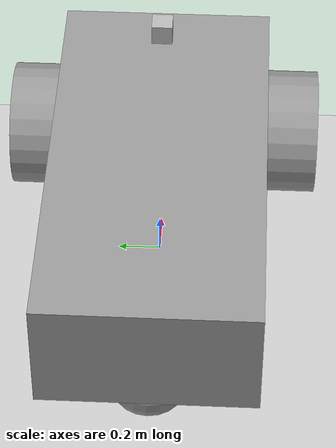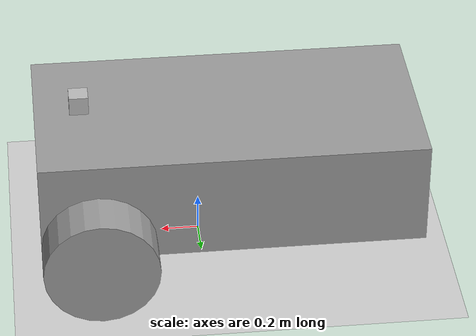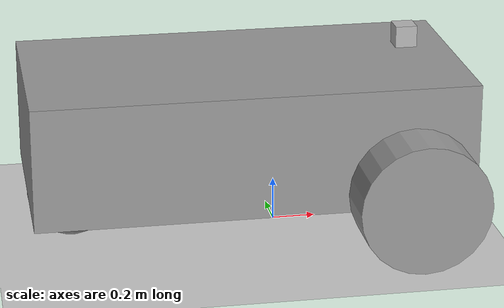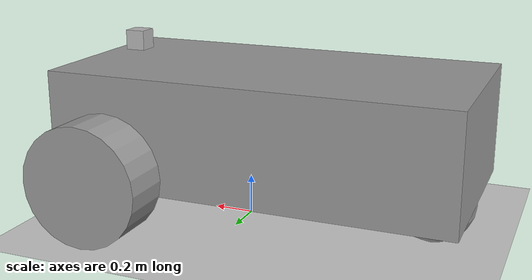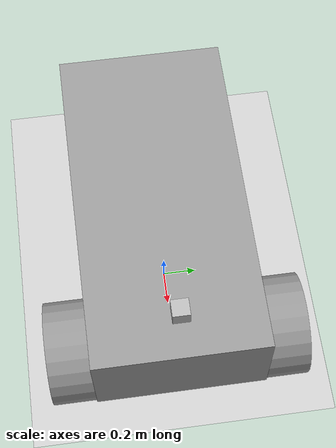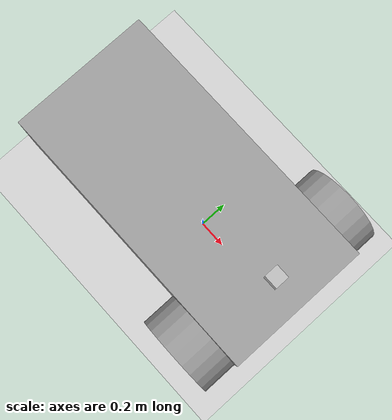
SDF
<?xml version="1.0" ?>
<sdf version="1.5">
  <world name="default">
    <!-- A global light source -->
    <include>
      <uri>file:///home/ironman/gazebo-robocomp/gazebo_robocomp_models/sun</uri>
    </include>
    <!-- A ground plane -->
    <include>
      <uri>file:///home/ironman/gazebo-robocomp/gazebo_robocomp_models/ground_plane</uri>
    </include>

    <!-- A testing model that includes the Velodyne sensor model -->
    <model name="my_robot">
      <!-- Attach the plugin to this model -->

      <include>
        <uri>file:///home/ironman/gazebo-robocomp/gazebo_robocomp_models/my_robot</uri>
      </include>

      <plugin name="DiffDrive" filename="libgazebo_robocomp_DiffDrive.so">
        <topicName>/DiffDrive/cmd</topicName>
      </plugin>

    </model>

  </world>
</sdf>

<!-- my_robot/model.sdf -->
<sdf version='1.5'>
	    <model name="my_robot">
  <pose frame=''>0 0 0.325 0 -0 0</pose>
    <link name='chassis'>
      <pose frame=''>-0.151427 -0 0.175 0 -0 0</pose>
      <inertial>
        <mass>1.14395</mass>
        <inertia>
          <ixx>0.126164</ixx>
          <ixy>0</ixy>
          <ixz>0</ixz>
          <iyy>0.416519</iyy>
          <iyz>0</iyz>
          <izz>0.481014</izz>
        </inertia>
        <pose frame=''>0 0 0 0 -0 0</pose>
      </inertial>
      <self_collide>0</self_collide>
      <visual name='visual'>
        <pose frame=''>0 0 0 0 -0 0</pose>
        <geometry>
          <box>
            <size>2.01142 1 0.568726</size>
          </box>
        </geometry>
        <material>
          <script>
            <uri>file://media/materials/scripts/gazebo.material</uri>
            <name>Gazebo/Grey</name>
          </script>
        </material>
        <cast_shadows>1</cast_shadows>
        <transparency>0</transparency>
      </visual>
      <collision name='collision'>
        <pose frame=''>0 0 0 0 -0 0</pose>
        <geometry>
          <box>
            <size>2.01142 1 0.568726</size>
          </box>
        </geometry>
        <surface>
          <friction>
            <ode>
              <mu>1</mu>
              <mu2>1</mu2>
              <fdir1>0 0 0</fdir1>
              <slip1>0</slip1>
              <slip2>0</slip2>
            </ode>
          </friction>
          <bounce>
            <restitution_coefficient>0</restitution_coefficient>
            <threshold>1e+06</threshold>
          </bounce>
          <contact>
            <collide_without_contact>0</collide_without_contact>
            <collide_without_contact_bitmask>1</collide_without_contact_bitmask>
            <collide_bitmask>1</collide_bitmask>
            <ode>
              <soft_cfm>0</soft_cfm>
              <soft_erp>0.2</soft_erp>
              <kp>1e+13</kp>
              <kd>1</kd>
              <max_vel>0.01</max_vel>
              <min_depth>0</min_depth>
            </ode>
          </contact>
        </surface>
      </collision>
    </link>
    <link name='wheel_1'>
      <pose frame=''>0.554283 0.625029 -0.025 1.5707 0 0</pose>
      <inertial>
        <mass>2</mass>
        <inertia>
          <ixx>0.145833</ixx>
          <ixy>0</ixy>
          <ixz>0</ixz>
          <iyy>0.145833</iyy>
          <iyz>0</iyz>
          <izz>0.125</izz>
        </inertia>
        <pose frame=''>0 0 0 0 -0 0</pose>
      </inertial>
      <self_collide>0</self_collide>
      <visual name='visual'>
        <pose frame=''>0 0 0 0 -0 0</pose>
        <geometry>
          <cylinder>
            <radius>0.3</radius>
            <length>0.25</length>
          </cylinder>
        </geometry>
        <material>
          <script>
            <uri>file://media/materials/scripts/gazebo.material</uri>
            <name>Gazebo/Grey</name>
          </script>
        </material>
        <cast_shadows>1</cast_shadows>
        <transparency>0</transparency>
      </visual>
      <collision name='collision'>
        <pose frame=''>0 0 0 0 -0 0</pose>
        <geometry>
          <cylinder>
            <radius>0.3</radius>
            <length>0.25</length>
          </cylinder>
        </geometry>
        <surface>
          <friction>
            <ode>
              <mu>1</mu>
              <mu2>1</mu2>
              <fdir1>0 0 0</fdir1>
              <slip1>0</slip1>
              <slip2>0</slip2>
            </ode>
          </friction>
          <bounce>
            <restitution_coefficient>0</restitution_coefficient>
            <threshold>1e+06</threshold>
          </bounce>
          <contact>
            <collide_without_contact>0</collide_without_contact>
            <collide_without_contact_bitmask>1</collide_without_contact_bitmask>
            <collide_bitmask>1</collide_bitmask>
            <ode>
              <soft_cfm>0</soft_cfm>
              <soft_erp>0.2</soft_erp>
              <kp>1e+13</kp>
              <kd>1</kd>
              <max_vel>0.01</max_vel>
              <min_depth>0</min_depth>
            </ode>
          </contact>
        </surface>
      </collision>
    </link>
    <link name='wheel_2'>
      <pose frame=''>0.554282 -0.625029 -0.025 1.5707 0 0</pose>
      <inertial>
        <mass>2</mass>
        <inertia>
          <ixx>0.145833</ixx>
          <ixy>0</ixy>
          <ixz>0</ixz>
          <iyy>0.145833</iyy>
          <iyz>0</iyz>
          <izz>0.125</izz>
        </inertia>
        <pose frame=''>0 0 0 0 -0 0</pose>
      </inertial>
      <self_collide>0</self_collide>
      <visual name='visual'>
        <pose frame=''>0 0 0 0 -0 0</pose>
        <geometry>
          <cylinder>
            <radius>0.3</radius>
            <length>0.25</length>
          </cylinder>
        </geometry>
        <material>
          <script>
            <uri>file://media/materials/scripts/gazebo.material</uri>
            <name>Gazebo/Grey</name>
          </script>
        </material>
        <cast_shadows>1</cast_shadows>
        <transparency>0</transparency>
      </visual>
      <collision name='collision'>
        <pose frame=''>0 0 0 0 -0 0</pose>
        <geometry>
          <cylinder>
            <radius>0.3</radius>
            <length>0.25</length>
          </cylinder>
        </geometry>
        <surface>
          <friction>
            <ode>
              <mu>1</mu>
              <mu2>1</mu2>
              <fdir1>0 0 0</fdir1>
              <slip1>0</slip1>
              <slip2>0</slip2>
            </ode>
          </friction>
          <bounce>
            <restitution_coefficient>0</restitution_coefficient>
            <threshold>1e+06</threshold>
          </bounce>
          <contact>
            <collide_without_contact>0</collide_without_contact>
            <collide_without_contact_bitmask>1</collide_without_contact_bitmask>
            <collide_bitmask>1</collide_bitmask>
            <ode>
              <soft_cfm>0</soft_cfm>
              <soft_erp>0.2</soft_erp>
              <kp>1e+13</kp>
              <kd>1</kd>
              <max_vel>0.01</max_vel>
              <min_depth>0</min_depth>
            </ode>
          </contact>
        </surface>
      </collision>
    </link>
    <link name='caster'>
      <pose frame=''>-0.957138 -0 -0.125 0 -0 0</pose>
      <inertial>
        <mass>1</mass>
        <inertia>
          <ixx>0.1</ixx>
          <ixy>0</ixy>
          <ixz>0</ixz>
          <iyy>0.1</iyy>
          <iyz>0</iyz>
          <izz>0.1</izz>
        </inertia>
        <pose frame=''>0 0 0 0 -0 0</pose>
      </inertial>
      <self_collide>0</self_collide>
      <visual name='visual'>
        <pose frame=''>0 0 0 0 -0 0</pose>
        <geometry>
          <sphere>
            <radius>0.2</radius>
          </sphere>
        </geometry>
        <material>
          <script>
            <uri>file://media/materials/scripts/gazebo.material</uri>
            <name>Gazebo/Grey</name>
          </script>
        </material>
        <cast_shadows>1</cast_shadows>
        <transparency>0</transparency>
      </visual>
      <collision name='collision'>
        <pose frame=''>0 0 0 0 -0 0</pose>
        <geometry>
          <sphere>
            <radius>0.2</radius>
          </sphere>
        </geometry>
        <surface>
          <friction>
            <ode>
              <mu>1</mu>
              <mu2>1</mu2>
              <fdir1>0 0 0</fdir1>
              <slip1>0</slip1>
              <slip2>0</slip2>
            </ode>
          </friction>
          <bounce>
            <restitution_coefficient>0</restitution_coefficient>
            <threshold>1e+06</threshold>
          </bounce>
          <contact>
            <collide_without_contact>0</collide_without_contact>
            <collide_without_contact_bitmask>1</collide_without_contact_bitmask>
            <collide_bitmask>1</collide_bitmask>
            <ode>
              <soft_cfm>0</soft_cfm>
              <soft_erp>0.2</soft_erp>
              <kp>1e+13</kp>
              <kd>1</kd>
              <max_vel>0.01</max_vel>
              <min_depth>0</min_depth>
            </ode>
          </contact>
        </surface>
      </collision>
    </link>
    <model name='laser'>
      <link name='link'>
        <pose frame=''>0.05 0.05 0.05 0 -0 0</pose>
        <inertial>
          <mass>0.1</mass>
          <inertia>
            <ixx>0.000166667</ixx>
            <iyy>0.000166667</iyy>
            <izz>0.000166667</izz>
          </inertia>
        </inertial>
        <collision name='collision'>
          <geometry>
            <box>
              <size>0.1 0.1 0.1</size>
            </box>
          </geometry>
        </collision>
        <visual name='visual'>
          <geometry>
            <box>
              <size>0.1 0.1 0.1</size>
            </box>
          </geometry>
        </visual>
        <sensor name='laser' type='ray'>
            <pose>0.01 0 0.03 0 -0 0</pose>
            <ray>
            <scan>
                <horizontal>
                <samples>640</samples>
                <resolution>1</resolution>
                <min_angle>-2.26889</min_angle>
                <max_angle>2.268899</max_angle>
                </horizontal>
            </scan>
            <range>
                <min>1</min>
                <max>10</max>
                <resolution>0.01</resolution>
            </range>
            <noise>
                <type>gaussian</type>
                <mean>0.0</mean>
                <stddev>0.01</stddev>
            </noise>
            </ray>
            <plugin name="gazebo_robocomp_laser" filename="libgazebo_robocomp_laser.so">
                <topic>/gazebo_robocomp_laser/scan/data</topic>
            </plugin>
            <always_on>1</always_on>
            <update_rate>30</update_rate>
            <visualize>true</visualize>
        </sensor>
      </link>
      <pose frame=''>0.569632 -0.03223 0.502056 0 -0 0</pose>
    </model>
    <joint name='chassis_wheel_1_revolute' type='revolute'>
      <parent>chassis</parent>
      <child>wheel_1</child>
      <pose frame=''>0 0 0 0 -0 0</pose>
      <axis>
        <xyz>0 0 1</xyz>
        <use_parent_model_frame>0</use_parent_model_frame>
        <limit>
          <lower>-1.79769e+308</lower>
          <upper>1.79769e+308</upper>
          <effort>-1</effort>
          <velocity>-1</velocity>
        </limit>
        <dynamics>
          <spring_reference>0</spring_reference>
          <spring_stiffness>0</spring_stiffness>
          <damping>0</damping>
          <friction>0</friction>
        </dynamics>
      </axis>
      <physics>
        <ode>
          <limit>
            <cfm>0</cfm>
            <erp>0.2</erp>
          </limit>
          <suspension>
            <cfm>0</cfm>
            <erp>0.2</erp>
          </suspension>
        </ode>
      </physics>
    </joint>
    <joint name='chassis_wheel_2_revolute' type='revolute'>
      <parent>chassis</parent>
      <child>wheel_2</child>
      <pose frame=''>0 0 0 0 -0 0</pose>
      <axis>
        <xyz>0 0 1</xyz>
        <use_parent_model_frame>0</use_parent_model_frame>
        <limit>
          <lower>-1.79769e+308</lower>
          <upper>1.79769e+308</upper>
          <effort>-1</effort>
          <velocity>-1</velocity>
        </limit>
        <dynamics>
          <spring_reference>0</spring_reference>
          <spring_stiffness>0</spring_stiffness>
          <damping>0</damping>
          <friction>0</friction>
        </dynamics>
      </axis>
      <physics>
        <ode>
          <limit>
            <cfm>0</cfm>
            <erp>0.2</erp>
          </limit>
          <suspension>
            <cfm>0</cfm>
            <erp>0.2</erp>
          </suspension>
        </ode>
      </physics>
    </joint>
    <joint name='chassis_caster_ball' type='ball'>
      <parent>chassis</parent>
      <child>caster</child>
      <pose frame=''>0 0 0 0 -0 0</pose>
      <physics>
        <ode>
          <limit>
            <cfm>0</cfm>
            <erp>0.2</erp>
          </limit>
          <suspension>
            <cfm>0</cfm>
            <erp>0.2</erp>
          </suspension>
        </ode>
      </physics>
    </joint>
    <joint name='chassis_laser_link_fixed' type='fixed'>
      <parent>chassis</parent>
      <child>laser::link</child>
      <pose frame=''>0 0 0 0 -0 0</pose>
      <physics>
        <ode>
          <limit>
            <cfm>0</cfm>
            <erp>0.2</erp>
          </limit>
          <suspension>
            <cfm>0</cfm>
            <erp>0.2</erp>
          </suspension>
        </ode>
      </physics>
    </joint>
    <static>0</static>
    <allow_auto_disable>1</allow_auto_disable>
    <plugin name='gazebo_robocomp_DiffDrive' filename='libgazebo_robocomp_DiffDrive.so'>
      <left_joint>chassis_wheel_1_revolute</left_joint>
      <right_joint>chassis_wheel_2_revolute</right_joint>
      <torque>5</torque>
    </plugin>
    </model>
</sdf>
